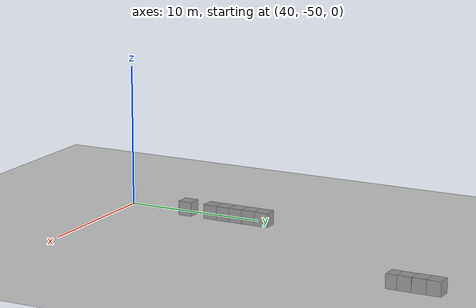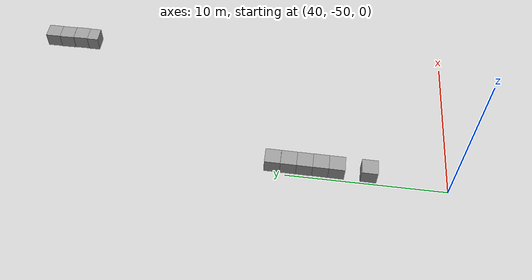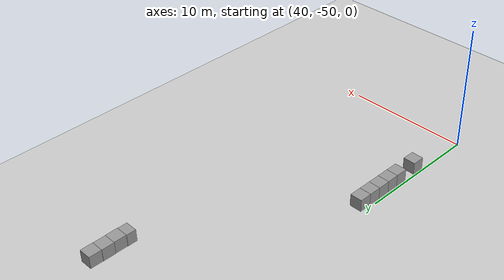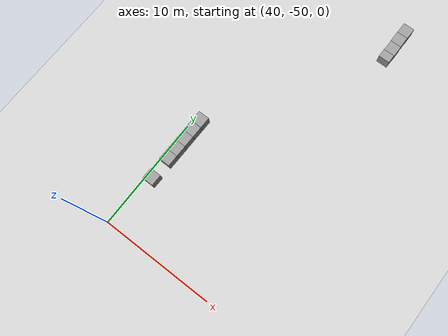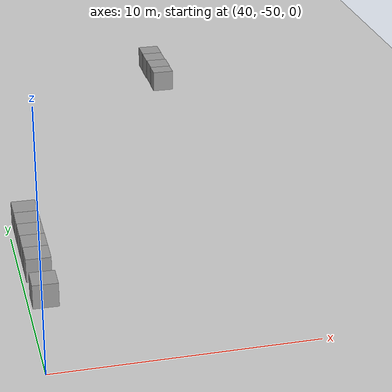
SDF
<sdf version="1.7">
 <world name="default">
  <model name="ground_plane">
   <static>1</static>
   <link name="link">
    <collision name="collision">
     <geometry><plane><normal>0 0 1</normal><size>100 100</size></plane></geometry>
     <surface>
      <contact><collide_bitmask>65535</collide_bitmask></contact>
      <friction><ode><mu>100</mu><mu2>50</mu2></ode></friction>
     </surface>
    </collision>
    <visual name="visual">
     <cast_shadows>0</cast_shadows>
     <geometry><plane><normal>0 0 1</normal><size>100 100</size></plane></geometry>
     <material>
      <script><uri>file://media/materials/scripts/gazebo.material</uri><name>Gazebo/Grey</name></script>
     </material>
    </visual>
   </link>
  </model>
  <model name="unit_box_38">
   <pose>49.5909 -22.4936 0.499995 0 1e-05 -0.001789</pose>
   <link name="link">
    <inertial>
     <mass>1</mass>
     <inertia>
      <ixx>0.166667</ixx>
      <ixy>0</ixy>
      <ixz>0</ixz>
      <iyy>0.166667</iyy>
      <iyz>0</iyz>
      <izz>0.166667</izz>
     </inertia>
    </inertial>
    <collision name="collision"><geometry><box><size>1 1 1</size></box></geometry></collision>
    <visual name="visual">
     <geometry><box><size>1 1 1</size></box></geometry>
     <material>
      <script><name>Gazebo/Grey</name><uri>file://media/materials/scripts/gazebo.material</uri></script>
     </material>
    </visual>
   </link>
  </model>
  <model name="unit_box_39">
   <pose>49.5773 -23.494 0.499995 0 -1e-05 -0.001144</pose>
   <link name="link">
    <inertial>
     <mass>1</mass>
     <inertia>
      <ixx>0.166667</ixx>
      <ixy>0</ixy>
      <ixz>0</ixz>
      <iyy>0.166667</iyy>
      <iyz>0</iyz>
      <izz>0.166667</izz>
     </inertia>
    </inertial>
    <collision name="collision"><geometry><box><size>1 1 1</size></box></geometry></collision>
    <visual name="visual">
     <geometry><box><size>1 1 1</size></box></geometry>
     <material>
      <script><name>Gazebo/Grey</name><uri>file://media/materials/scripts/gazebo.material</uri></script>
     </material>
    </visual>
   </link>
  </model>
  <model name="unit_box_40">
   <pose>49.6001 -24.495 0.499995 -0 1e-05 -0.000304</pose>
   <link name="link">
    <inertial>
     <mass>1</mass>
     <inertia>
      <ixx>0.166667</ixx>
      <ixy>0</ixy>
      <ixz>0</ixz>
      <iyy>0.166667</iyy>
      <iyz>0</iyz>
      <izz>0.166667</izz>
     </inertia>
    </inertial>
    <collision name="collision"><geometry><box><size>1 1 1</size></box></geometry></collision>
    <visual name="visual">
     <geometry><box><size>1 1 1</size></box></geometry>
     <material>
      <script><name>Gazebo/Grey</name><uri>file://media/materials/scripts/gazebo.material</uri></script>
     </material>
    </visual>
   </link>
  </model>
  <model name="unit_box_41">
   <pose>49.5785 -25.3795 0.499995 0 1e-05 -0.00012</pose>
   <link name="link">
    <inertial>
     <mass>1</mass>
     <inertia>
      <ixx>0.166667</ixx>
      <ixy>0</ixy>
      <ixz>0</ixz>
      <iyy>0.166667</iyy>
      <iyz>0</iyz>
      <izz>0.166667</izz>
     </inertia>
    </inertial>
    <collision name="collision"><geometry><box><size>1 0.7685 1</size></box></geometry></collision>
    <visual name="visual">
     <geometry><box><size>1 0.7685 1</size></box></geometry>
     <material>
      <script><name>Gazebo/Grey</name><uri>file://media/materials/scripts/gazebo.material</uri></script>
     </material>
    </visual>
   </link>
  </model>
  <model name="unit_box_4">
   <pose>40.708 -39.1313 0.5 0 -0 -0.005903</pose>
   <link name="link">
    <inertial>
     <mass>1</mass>
     <inertia>
      <ixx>0.166667</ixx>
      <ixy>0</ixy>
      <ixz>0</ixz>
      <iyy>0.166667</iyy>
      <iyz>0</iyz>
      <izz>0.166667</izz>
     </inertia>
    </inertial>
    <collision name="collision"><geometry><box><size>1 1 1</size></box></geometry></collision>
    <visual name="visual">
     <geometry><box><size>1 1 1</size></box></geometry>
     <material>
      <script><name>Gazebo/Grey</name><uri>file://media/materials/scripts/gazebo.material</uri></script>
     </material>
    </visual>
   </link>
  </model>
  <model name="unit_box_12">
   <pose>40.6989 -40.1348 0.499995 1e-05 -0 -0.013075</pose>
   <link name="link">
    <inertial>
     <mass>1</mass>
     <inertia>
      <ixx>0.166667</ixx>
      <ixy>0</ixy>
      <ixz>0</ixz>
      <iyy>0.166667</iyy>
      <iyz>0</iyz>
      <izz>0.166667</izz>
     </inertia>
    </inertial>
    <collision name="collision"><geometry><box><size>1 1 1</size></box></geometry></collision>
    <visual name="visual">
     <geometry><box><size>1 1 1</size></box></geometry>
     <material>
      <script><name>Gazebo/Grey</name><uri>file://media/materials/scripts/gazebo.material</uri></script>
     </material>
    </visual>
   </link>
  </model>
  <model name="unit_box_23">
   <pose>40.6893 -41.1348 0.499995 1e-05 -0 -0.013083</pose>
   <link name="link">
    <inertial>
     <mass>1</mass>
     <inertia>
      <ixx>0.166667</ixx>
      <ixy>0</ixy>
      <ixz>0</ixz>
      <iyy>0.166667</iyy>
      <iyz>0</iyz>
      <izz>0.166667</izz>
     </inertia>
    </inertial>
    <collision name="collision"><geometry><box><size>1 1 1</size></box></geometry></collision>
    <visual name="visual">
     <geometry><box><size>1 1 1</size></box></geometry>
     <material>
      <script><name>Gazebo/Grey</name><uri>file://media/materials/scripts/gazebo.material</uri></script>
     </material>
    </visual>
   </link>
  </model>
  <model name="unit_box_30">
   <pose>40.6861 -42.135 0.499995 1e-05 -0 -0.013384</pose>
   <link name="link">
    <inertial>
     <mass>1</mass>
     <inertia>
      <ixx>0.166667</ixx>
      <ixy>0</ixy>
      <ixz>0</ixz>
      <iyy>0.166667</iyy>
      <iyz>0</iyz>
      <izz>0.166667</izz>
     </inertia>
    </inertial>
    <collision name="collision"><geometry><box><size>1 1 1</size></box></geometry></collision>
    <visual name="visual">
     <geometry><box><size>1 1 1</size></box></geometry>
     <material>
      <script><name>Gazebo/Grey</name><uri>file://media/materials/scripts/gazebo.material</uri></script>
     </material>
    </visual>
   </link>
  </model>
  <model name="unit_box_31">
   <pose>40.6768 -43.135 0.499995 -1e-05 -0 -0.013503</pose>
   <link name="link">
    <inertial>
     <mass>1</mass>
     <inertia>
      <ixx>0.166667</ixx>
      <ixy>0</ixy>
      <ixz>0</ixz>
      <iyy>0.166667</iyy>
      <iyz>0</iyz>
      <izz>0.166667</izz>
     </inertia>
    </inertial>
    <collision name="collision"><geometry><box><size>1 1 1</size></box></geometry></collision>
    <visual name="visual">
     <geometry><box><size>1 1 1</size></box></geometry>
     <material>
      <script><name>Gazebo/Grey</name><uri>file://media/materials/scripts/gazebo.material</uri></script>
     </material>
    </visual>
   </link>
  </model>
  <model name="unit_box_32">
   <pose>40.6551 -45.1356 0.499995 0 -1e-05 -0.014932</pose>
   <link name="link">
    <inertial>
     <mass>1</mass>
     <inertia>
      <ixx>0.166667</ixx>
      <ixy>0</ixy>
      <ixz>0</ixz>
      <iyy>0.166667</iyy>
      <iyz>0</iyz>
      <izz>0.166667</izz>
     </inertia>
    </inertial>
    <collision name="collision"><geometry><box><size>1 1 1</size></box></geometry></collision>
    <visual name="visual">
     <geometry><box><size>1 1 1</size></box></geometry>
     <material>
      <script><name>Gazebo/Grey</name><uri>file://media/materials/scripts/gazebo.material</uri></script>
     </material>
    </visual>
   </link>
  </model>
 </world>
</sdf>
